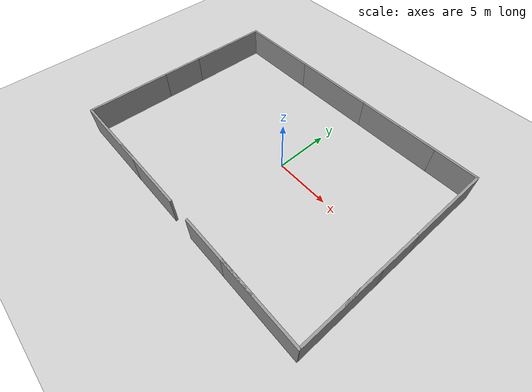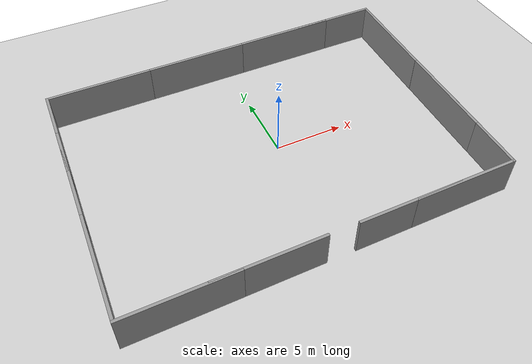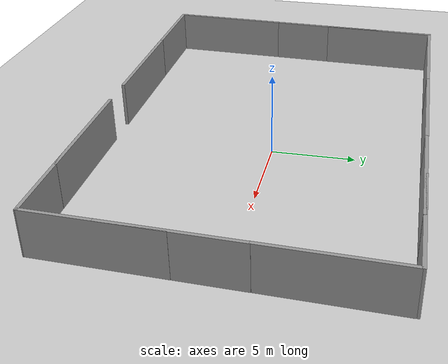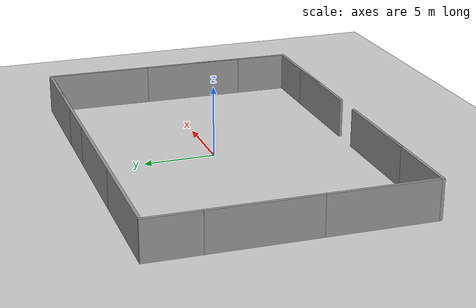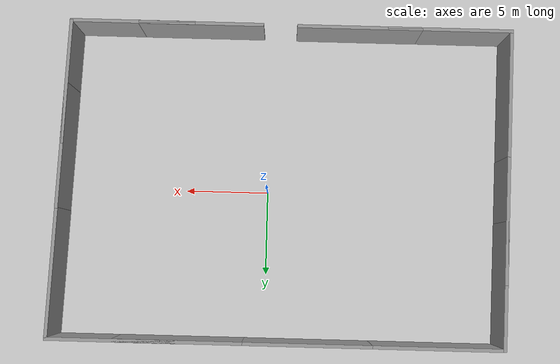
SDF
<sdf version="1.6">
 <world name="default">
  <light name="sun" type="directional">
   <pose>0 0 10 0 -0 0</pose>
   <diffuse>0.8 0.8 0.8 1</diffuse>
   <specular>0.2 0.2 0.2 1</specular>
   <attenuation>
    <range>1000</range>
    <constant>0.9</constant>
    <linear>0.01</linear>
    <quadratic>0.001</quadratic>
   </attenuation>
   <direction>-0.5 0.1 -0.9</direction>
  </light>
  <model name="ground_plane">
   <static>1</static>
   <link name="link">
    <collision name="collision">
     <geometry><plane><normal>0 0 1</normal><size>100 100</size></plane></geometry>
     <surface><friction><ode><mu>100</mu><mu2>50</mu2></ode></friction></surface>
    </collision>
    <visual name="visual">
     <cast_shadows>0</cast_shadows>
     <geometry><plane><normal>0 0 1</normal><size>100 100</size></plane></geometry>
     <material>
      <script><uri>file://media/materials/scripts/gazebo.material</uri><name>Gazebo/Grey</name></script>
     </material>
    </visual>
   </link>
  </model>
  <gravity>0 0 -9.8</gravity>
  <magnetic_field>6e-06 2.3e-05 -4.2e-05</magnetic_field>
  <atmosphere type="adiabatic"/>
  <physics name="default_physics" default="0" type="ode">
   <max_step_size>0.001</max_step_size>
   <real_time_factor>1</real_time_factor>
   <real_time_update_rate>1000</real_time_update_rate>
  </physics>
  <scene><ambient>0.4 0.4 0.4 1</ambient><background>0.7 0.7 0.7 1</background><shadows>1</shadows></scene>
  <spherical_coordinates>
   <surface_model>EARTH_WGS84</surface_model>
   <latitude_deg>0</latitude_deg>
   <longitude_deg>0</longitude_deg>
   <elevation>0</elevation>
   <heading_deg>0</heading_deg>
  </spherical_coordinates>
  <model name="grey_wall_0">
   <static>1</static>
   <link name="link">
    <pose>0 0 1.4 0 -0 0</pose>
    <collision name="collision"><geometry><box><size>7.5 0.2 2.8</size></box></geometry></collision>
    <visual name="visual">
     <cast_shadows>0</cast_shadows>
     <geometry><box><size>7.5 0.2 2.8</size></box></geometry>
     <material>
      <script>
       <uri>model://grey_wall/materials/scripts</uri>
       <uri>model://grey_wall/materials/textures</uri>
       <name>vrc/grey_wall</name>
      </script>
     </material>
    </visual>
   </link>
   <pose>-5.27962 -9.83663 0 0 -0 0</pose>
  </model>
  <model name="grey_wall_1">
   <static>1</static>
   <link name="link">
    <pose>0 0 1.4 0 -0 0</pose>
    <collision name="collision"><geometry><box><size>7.5 0.2 2.8</size></box></geometry></collision>
    <visual name="visual">
     <cast_shadows>0</cast_shadows>
     <geometry><box><size>7.5 0.2 2.8</size></box></geometry>
     <material>
      <script>
       <uri>model://grey_wall/materials/scripts</uri>
       <uri>model://grey_wall/materials/textures</uri>
       <name>vrc/grey_wall</name>
      </script>
     </material>
    </visual>
   </link>
   <pose>-10.6982 -9.84136 0 0 -0 0</pose>
  </model>
  <model name="grey_wall">
   <static>1</static>
   <link name="link">
    <pose>0 0 1.4 0 -0 0</pose>
    <collision name="collision"><geometry><box><size>7.5 0.2 2.8</size></box></geometry></collision>
    <visual name="visual">
     <cast_shadows>0</cast_shadows>
     <geometry><box><size>7.5 0.2 2.8</size></box></geometry>
     <material>
      <script>
       <uri>model://grey_wall/materials/scripts</uri>
       <uri>model://grey_wall/materials/textures</uri>
       <name>vrc/grey_wall</name>
      </script>
     </material>
    </visual>
   </link>
   <pose>4.22516 -9.85167 0 0 -0 0</pose>
  </model>
  <model name="grey_wall_2">
   <static>1</static>
   <link name="link">
    <pose>0 0 1.4 0 -0 0</pose>
    <collision name="collision"><geometry><box><size>7.5 0.2 2.8</size></box></geometry></collision>
    <visual name="visual">
     <cast_shadows>0</cast_shadows>
     <geometry><box><size>7.5 0.2 2.8</size></box></geometry>
     <material>
      <script>
       <uri>model://grey_wall/materials/scripts</uri>
       <uri>model://grey_wall/materials/textures</uri>
       <name>vrc/grey_wall</name>
      </script>
     </material>
    </visual>
   </link>
   <pose>4.90821 8.92881 0 0 -0 0</pose>
  </model>
  <model name="grey_wall_3">
   <static>1</static>
   <link name="link">
    <pose>0 0 1.4 0 -0 0</pose>
    <collision name="collision"><geometry><box><size>7.5 0.2 2.8</size></box></geometry></collision>
    <visual name="visual">
     <cast_shadows>0</cast_shadows>
     <geometry><box><size>7.5 0.2 2.8</size></box></geometry>
     <material>
      <script>
       <uri>model://grey_wall/materials/scripts</uri>
       <uri>model://grey_wall/materials/textures</uri>
       <name>vrc/grey_wall</name>
      </script>
     </material>
    </visual>
   </link>
   <pose>-2.55157 8.92844 0 0 -0 0</pose>
  </model>
  <model name="grey_wall_4">
   <static>1</static>
   <link name="link">
    <pose>0 0 1.4 0 -0 0</pose>
    <collision name="collision"><geometry><box><size>7.5 0.2 2.8</size></box></geometry></collision>
    <visual name="visual">
     <cast_shadows>0</cast_shadows>
     <geometry><box><size>7.5 0.2 2.8</size></box></geometry>
     <material>
      <script>
       <uri>model://grey_wall/materials/scripts</uri>
       <uri>model://grey_wall/materials/textures</uri>
       <name>vrc/grey_wall</name>
      </script>
     </material>
    </visual>
   </link>
   <pose>-14.2514 -5.99548 0 0 -0 1.54507</pose>
  </model>
  <model name="grey_wall_4_clone">
   <static>1</static>
   <link name="link">
    <pose>0 0 1.4 0 -0 0</pose>
    <collision name="collision"><geometry><box><size>7.5 0.2 2.8</size></box></geometry></collision>
    <visual name="visual">
     <cast_shadows>0</cast_shadows>
     <geometry><box><size>7.5 0.2 2.8</size></box></geometry>
     <material>
      <script>
       <uri>model://grey_wall/materials/scripts</uri>
       <uri>model://grey_wall/materials/textures</uri>
       <name>vrc/grey_wall</name>
      </script>
     </material>
    </visual>
   </link>
   <pose>-14.0565 1.47534 0 0 -0 1.54507</pose>
  </model>
  <model name="grey_wall_4_clone_0">
   <static>1</static>
   <link name="link">
    <pose>0 0 1.4 0 -0 0</pose>
    <collision name="collision"><geometry><box><size>7.5 0.2 2.8</size></box></geometry></collision>
    <visual name="visual">
     <cast_shadows>0</cast_shadows>
     <geometry><box><size>7.5 0.2 2.8</size></box></geometry>
     <material>
      <script>
       <uri>model://grey_wall/materials/scripts</uri>
       <uri>model://grey_wall/materials/textures</uri>
       <name>vrc/grey_wall</name>
      </script>
     </material>
    </visual>
   </link>
   <pose>-13.9555 5.27596 0 0 -0 1.54507</pose>
  </model>
  <model name="grey_wall_5">
   <static>1</static>
   <link name="link">
    <pose>0 0 1.4 0 -0 0</pose>
    <collision name="collision"><geometry><box><size>7.5 0.2 2.8</size></box></geometry></collision>
    <visual name="visual">
     <cast_shadows>0</cast_shadows>
     <geometry><box><size>7.5 0.2 2.8</size></box></geometry>
     <material>
      <script>
       <uri>model://grey_wall/materials/scripts</uri>
       <uri>model://grey_wall/materials/textures</uri>
       <name>vrc/grey_wall</name>
      </script>
     </material>
    </visual>
   </link>
   <pose>-10.0268 8.92803 0 0 -0 0</pose>
  </model>
  <model name="grey_wall_6">
   <static>1</static>
   <link name="link">
    <pose>0 0 1.4 0 -0 0</pose>
    <collision name="collision"><geometry><box><size>7.5 0.2 2.8</size></box></geometry></collision>
    <visual name="visual">
     <cast_shadows>0</cast_shadows>
     <geometry><box><size>7.5 0.2 2.8</size></box></geometry>
     <material>
      <script>
       <uri>model://grey_wall/materials/scripts</uri>
       <uri>model://grey_wall/materials/textures</uri>
       <name>vrc/grey_wall</name>
      </script>
     </material>
    </visual>
   </link>
   <pose>8.79212 8.93597 0 0 -0 0</pose>
  </model>
  <model name="grey_wall_4_clone_1">
   <static>1</static>
   <link name="link">
    <pose>0 0 1.4 0 -0 0</pose>
    <collision name="collision"><geometry><box><size>7.5 0.2 2.8</size></box></geometry></collision>
    <visual name="visual">
     <cast_shadows>0</cast_shadows>
     <geometry><box><size>7.5 0.2 2.8</size></box></geometry>
     <material>
      <script>
       <uri>model://grey_wall/materials/scripts</uri>
       <uri>model://grey_wall/materials/textures</uri>
       <name>vrc/grey_wall</name>
      </script>
     </material>
    </visual>
   </link>
   <pose>12.3546 5.14176 0 0 -0 1.54507</pose>
  </model>
  <model name="grey_wall_4_clone_2">
   <static>1</static>
   <link name="link">
    <pose>0 0 1.4 0 -0 0</pose>
    <collision name="collision"><geometry><box><size>7.5 0.2 2.8</size></box></geometry></collision>
    <visual name="visual">
     <cast_shadows>0</cast_shadows>
     <geometry><box><size>7.5 0.2 2.8</size></box></geometry>
     <material>
      <script>
       <uri>model://grey_wall/materials/scripts</uri>
       <uri>model://grey_wall/materials/textures</uri>
       <name>vrc/grey_wall</name>
      </script>
     </material>
    </visual>
   </link>
   <pose>12.1736 -2.28917 0 0 -0 1.54507</pose>
  </model>
  <model name="grey_wall_4_clone_3">
   <static>1</static>
   <link name="link">
    <pose>0 0 1.4 0 -0 0</pose>
    <collision name="collision"><geometry><box><size>7.5 0.2 2.8</size></box></geometry></collision>
    <visual name="visual">
     <cast_shadows>0</cast_shadows>
     <geometry><box><size>7.5 0.2 2.8</size></box></geometry>
     <material>
      <script>
       <uri>model://grey_wall/materials/scripts</uri>
       <uri>model://grey_wall/materials/textures</uri>
       <name>vrc/grey_wall</name>
      </script>
     </material>
    </visual>
   </link>
   <pose>12.08 -6.14271 0 0 -0 1.54507</pose>
  </model>
  <model name="grey_wall_clone">
   <static>1</static>
   <link name="link">
    <pose>0 0 1.4 0 -0 0</pose>
    <collision name="collision"><geometry><box><size>7.5 0.2 2.8</size></box></geometry></collision>
    <visual name="visual">
     <cast_shadows>0</cast_shadows>
     <geometry><box><size>7.5 0.2 2.8</size></box></geometry>
     <material>
      <script>
       <uri>model://grey_wall/materials/scripts</uri>
       <uri>model://grey_wall/materials/textures</uri>
       <name>vrc/grey_wall</name>
      </script>
     </material>
    </visual>
   </link>
   <pose>8.33037 -9.85584 0 0 -0 0</pose>
  </model>
 </world>
</sdf>
